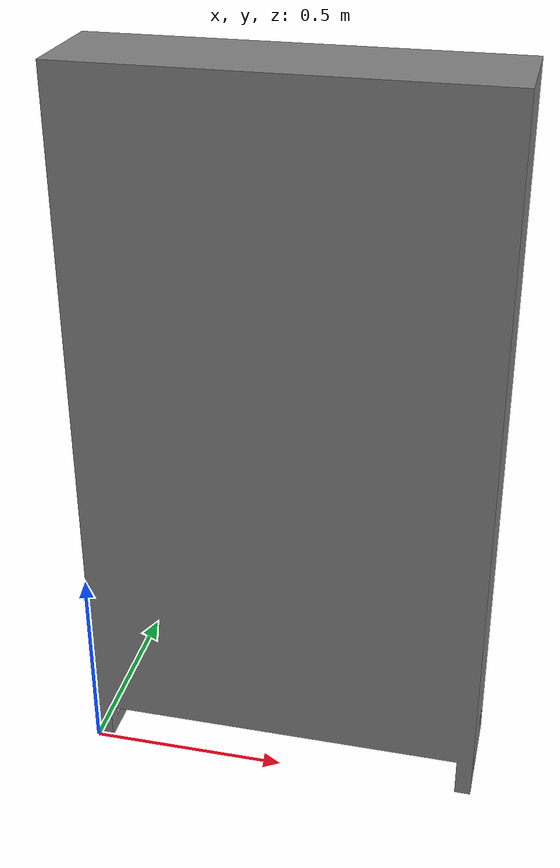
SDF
<?xml version="1.0"?>

<sdf version="1.4">
    <model name="shelf">
        <static>true</static>
        <link name="shelf_link">

            <visual name="shelf_mesh">
                <geometry>
                    <mesh>
                        <uri>model://shelf/meshes/model.dae</uri>
                    </mesh>
                </geometry>
            </visual>

            <collision name="shelf_collison">
                <geometry>
                    <box>
                        <size>1 1 1</size>
                    </box>
                </geometry>
            </collision>

        </link>
    </model>
</sdf>
